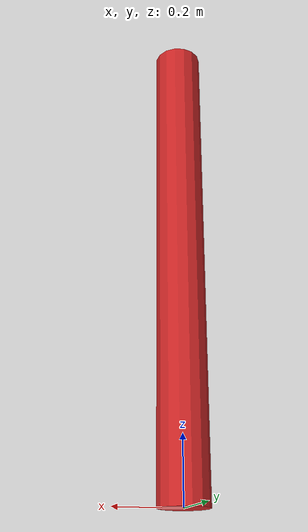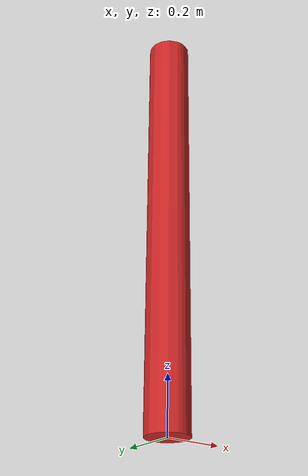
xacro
<?xml version="1.0" encoding="utf-8"?>
<robot name="task1_flare">
  <link name="flare">
    <inertial>
      <origin
        xyz="0 4.73845382683391E-17 0.75"
        rpy="0 0 0" />
      <mass
        value="26.507" />
      <inertia
        ixx="5.0074"
        ixy="1.7642903739519E-49"
        ixz="-2.8814E-33"
        iyy="5.0074"
        iyz="-3.02039911392318E-16"
        izz="0.074551" />
    </inertial>
    <visual>
      <origin
        xyz="0 0 0"
        rpy="1.5707963267949 0 0" />
      <geometry>
        <mesh
          filename="package://uwv_env/meshes/sauvc_pool/task1_flare.STL" />
      </geometry>
    </visual>
    <collision>
      <origin
        xyz="0 0 0"
        rpy="1.5707963267949 0 0" />
      <geometry>
        <mesh
          filename="package://uwv_env/meshes/sauvc_pool/task1_flare.STL" />
      </geometry>
    </collision>
  </link>

  <gazebo reference="flare">
	<material>Gazebo/Red</material>
  </gazebo>

  <gazebo>
	<static>true</static>
  </gazebo>

</robot>
